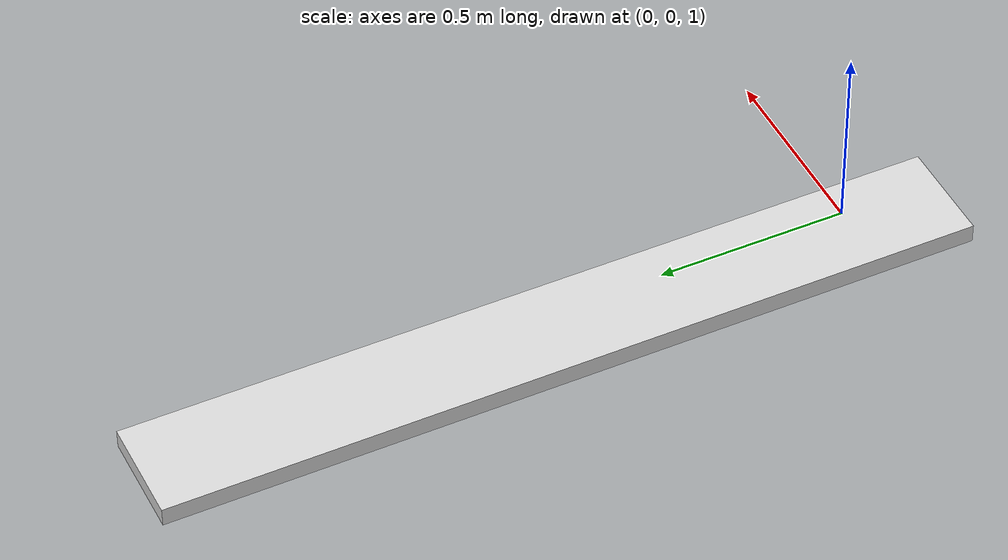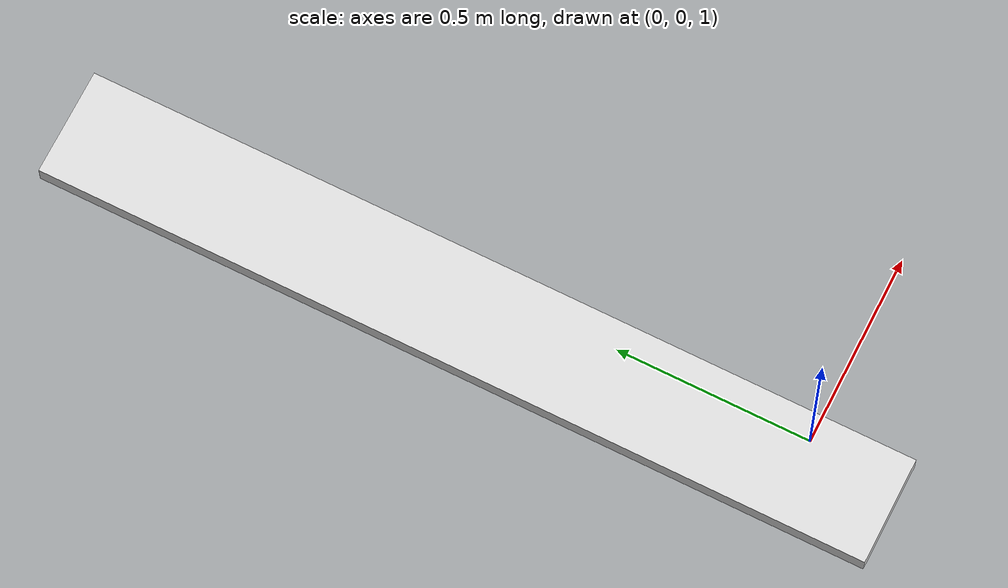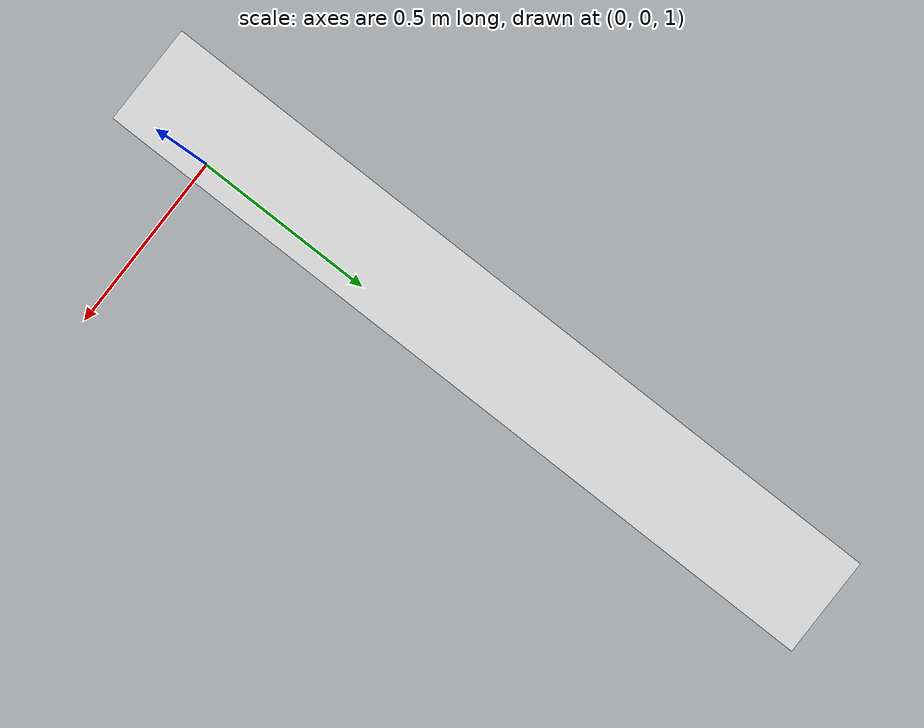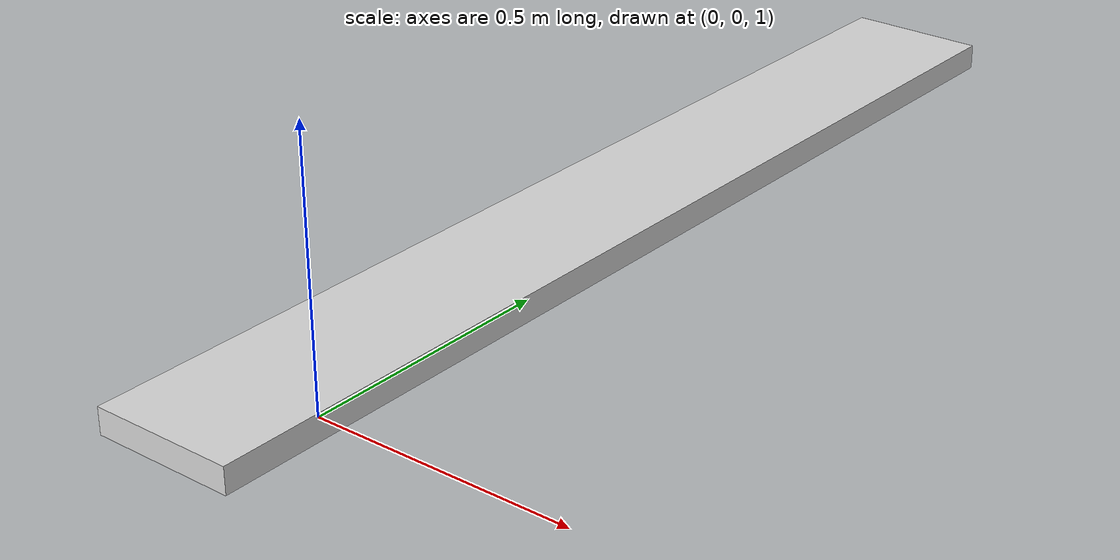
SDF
<?xml version="1.0" ?>
<!-- tmp sdf file generated from LISDF -->
<sdf version="1.9">
  <world name="tmp_world">

<model name="counter_back#1">
  <static>True</static>
  <pose>-0.0860000029206276 0.8299999833106995 1.0240000486373901 0.0 -0.0 0.0</pose>
  <link name="box">

    <inertial>
      <mass>0</mass>
      <pose>0.0 0.0 0.0 0.0 -0.0 0.0</pose>
      <inertia>
        <ixx>0</ixx>
        <ixy>0</ixy>
        <ixz>0</ixz>
        <iyy>0</iyy>
        <iyz>0</iyz>
        <izz>0</izz>
      </inertia>
    </inertial>
    <collision name="box_collision">>
      <pose>0.0 0.0 0.0 0.0 -0.0 0.0</pose>
      <geometry>
        <box>
          <size>0.2770000100135803 2.1449999809265137 0.05000000074505806</size>
        </box>
      </geometry>

    </collision>
    <visual name="box_visual">
      <pose>0.0 0.0 0.0 0.0 -0.0 0.0</pose>
      <geometry>
        <box>
          <size>0.2770000100135803 2.1449999809265137 0.05000000074505806</size>
        </box>
      </geometry>
      <material>
        <ambient>1.0 1.0 1.0 1.0</ambient>
        <diffuse>0.8500000238418579 0.8500000238418579 0.8500000238418579 1.0</diffuse>
        <specular>0.0 0.0 0.0 1.0</specular>
        <emissive>0.0 0.0 0.0 1.0</emissive>
      </material>
      <cast_shadows>True</cast_shadows>
    </visual>
    <self_collide>True</self_collide>
  </link>

</model>

  </world>
</sdf>
